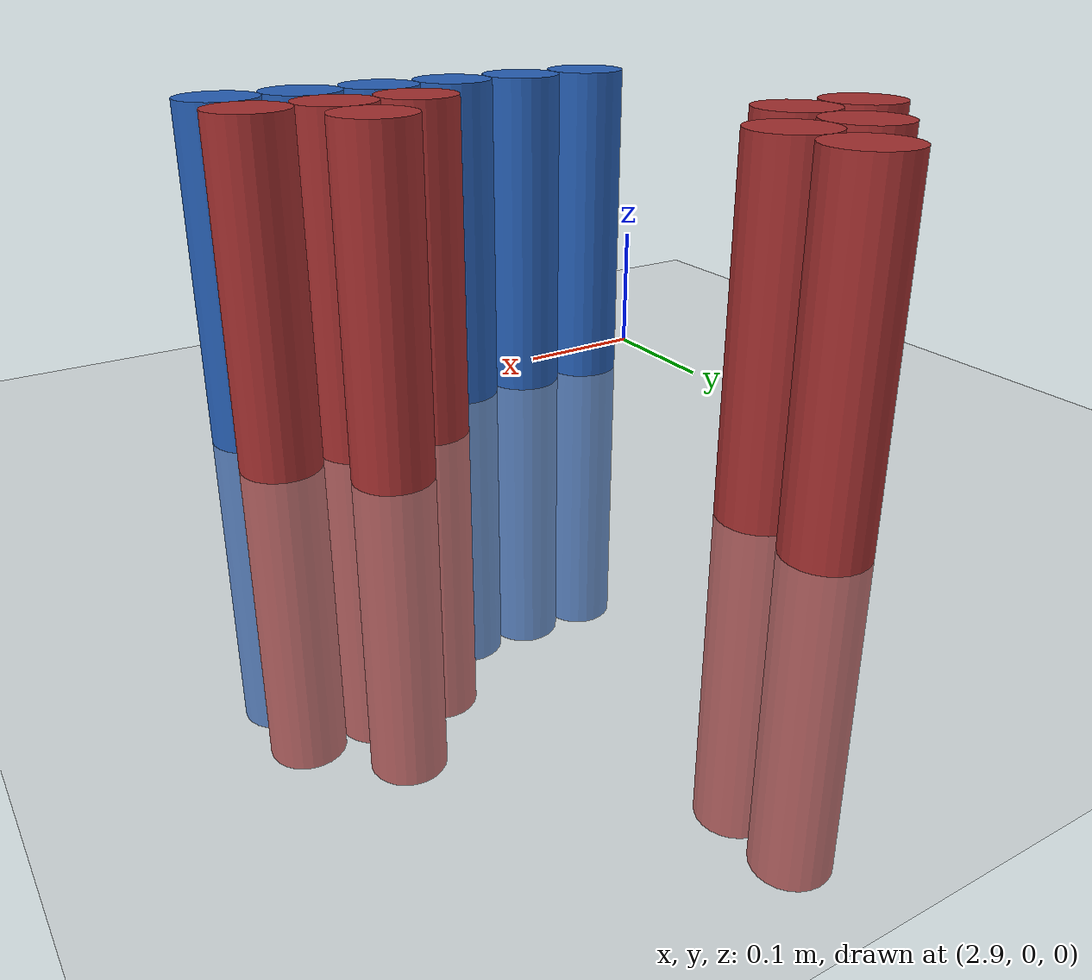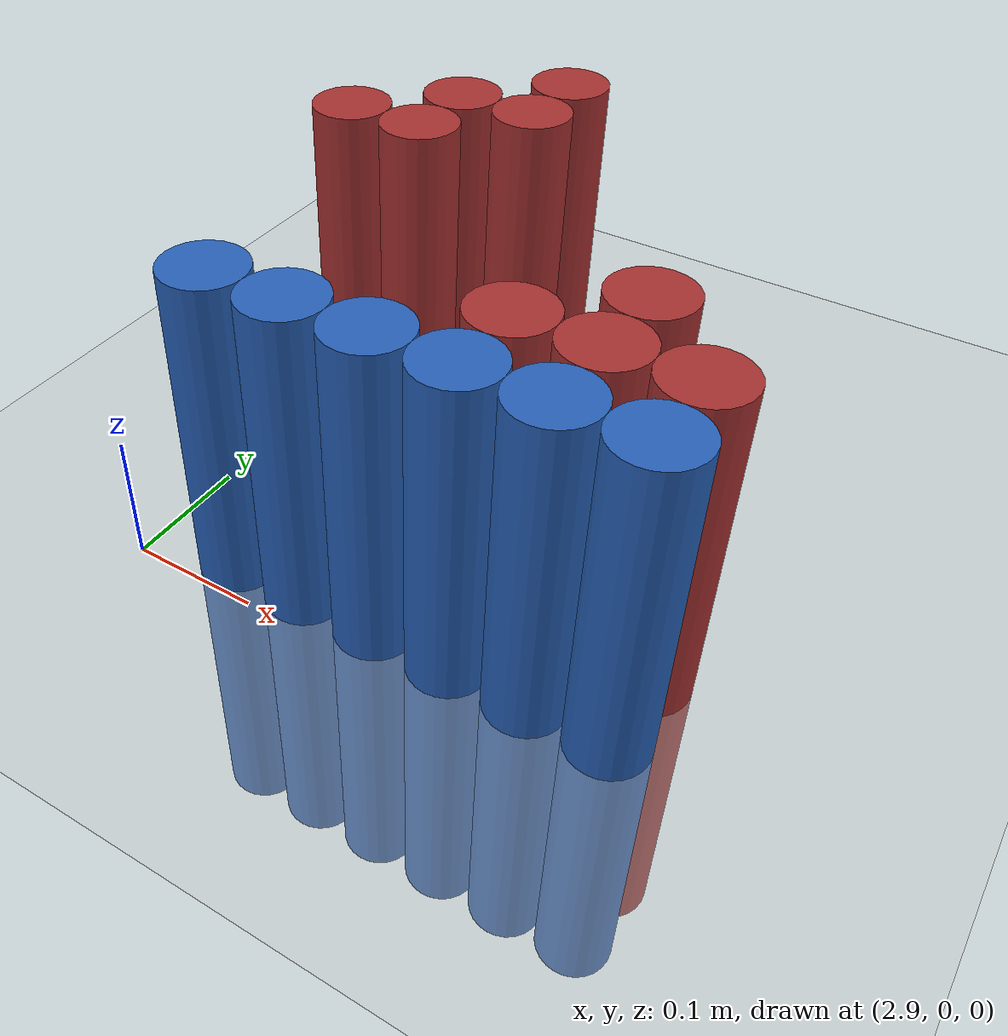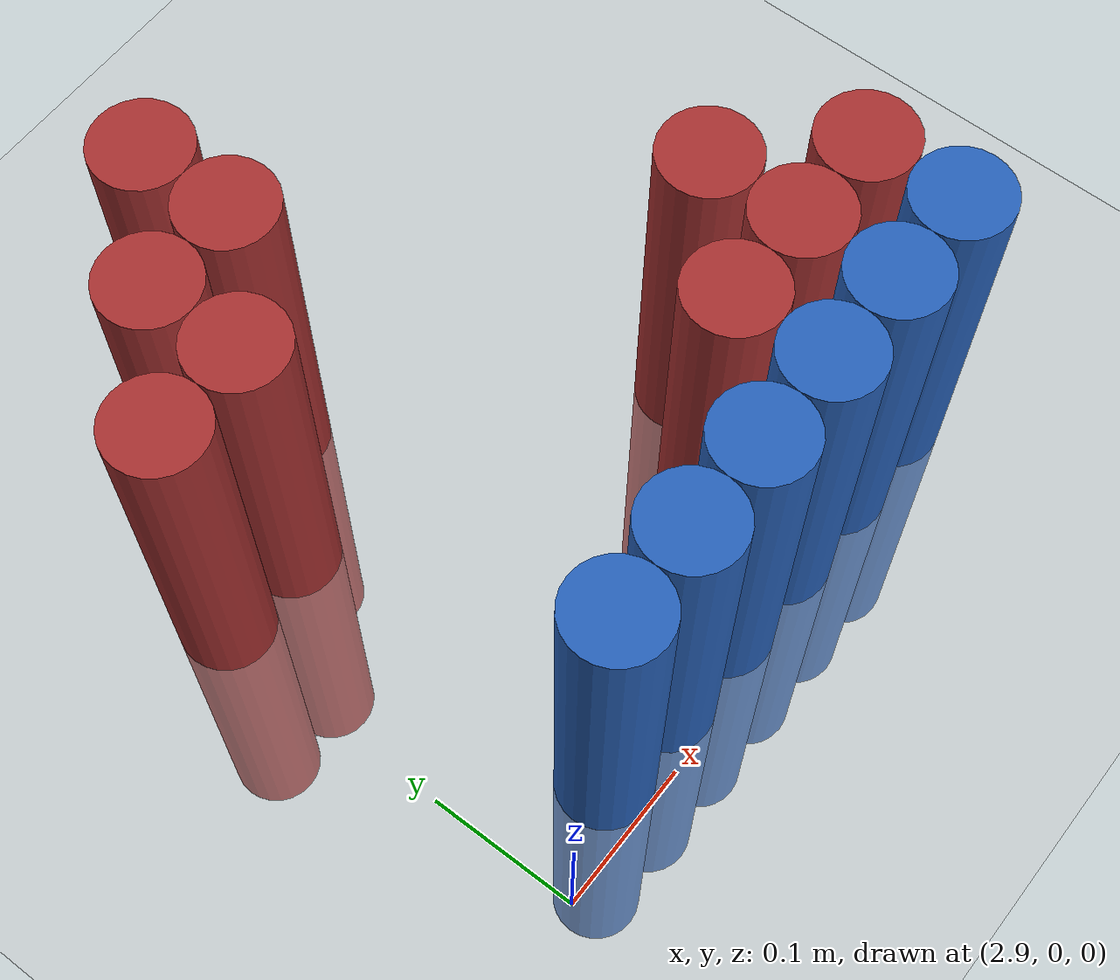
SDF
<sdf version="1.6">
 <world name="default">
  <model name="ground_plane">
   <static>1</static>
   <link name="link">
    <collision name="collision">
     <geometry><plane><normal>0 0 1</normal><size>100 100</size></plane></geometry>
     <surface><friction><ode><mu>100</mu><mu2>50</mu2></ode></friction></surface>
    </collision>
    <visual name="visual">
     <cast_shadows>0</cast_shadows>
     <geometry><plane><normal>0 0 1</normal><size>100 100</size></plane></geometry>
     <material>
      <script><uri>file://media/materials/scripts/gazebo.material</uri><name>Gazebo/Grey</name></script>
     </material>
    </visual>
   </link>
  </model>
  <model name="unit_cylinder_188">
   <static>1</static>
   <pose>3.030000 0.390000 0.000000 0.000000 0.000000 0.000000</pose>
   <link name="link">
    <inertial>
     <mass>1</mass>
     <inertia><ixx>0.145833</ixx><ixy>0</ixy><ixz>0</ixz><iyy>0.145833</iyy><iyz>0</iyz><izz>0.125</izz></inertia>
    </inertial>
    <collision name="collision">
     <geometry><cylinder><radius>0.030000</radius><length>0.5</length></cylinder></geometry>
    </collision>
    <visual name="visual">
     <geometry><cylinder><radius>0.030000</radius><length>0.5</length></cylinder></geometry>
     <material>
      <ambient>0.648000 0.192000 0.192000 1</ambient>
      <diffuse>0.648000 0.192000 0.192000 1</diffuse>
     </material>
     <material>
      <script><name>Gazebo/Grey</name><uri>file://media/materials/scripts/gazebo.material</uri></script>
     </material>
    </visual>
   </link>
  </model>
  <model name="unit_cylinder_189">
   <static>1</static>
   <pose>2.970000 0.330000 0.000000 0.000000 0.000000 0.000000</pose>
   <link name="link">
    <inertial>
     <mass>1</mass>
     <inertia><ixx>0.145833</ixx><ixy>0</ixy><ixz>0</ixz><iyy>0.145833</iyy><iyz>0</iyz><izz>0.125</izz></inertia>
    </inertial>
    <collision name="collision">
     <geometry><cylinder><radius>0.030000</radius><length>0.5</length></cylinder></geometry>
    </collision>
    <visual name="visual">
     <geometry><cylinder><radius>0.030000</radius><length>0.5</length></cylinder></geometry>
     <material>
      <ambient>0.648000 0.192000 0.192000 1</ambient>
      <diffuse>0.648000 0.192000 0.192000 1</diffuse>
     </material>
     <material>
      <script><name>Gazebo/Grey</name><uri>file://media/materials/scripts/gazebo.material</uri></script>
     </material>
    </visual>
   </link>
  </model>
  <model name="unit_cylinder_190">
   <static>1</static>
   <pose>3.030000 0.330000 0.000000 0.000000 0.000000 0.000000</pose>
   <link name="link">
    <inertial>
     <mass>1</mass>
     <inertia><ixx>0.145833</ixx><ixy>0</ixy><ixz>0</ixz><iyy>0.145833</iyy><iyz>0</iyz><izz>0.125</izz></inertia>
    </inertial>
    <collision name="collision">
     <geometry><cylinder><radius>0.030000</radius><length>0.5</length></cylinder></geometry>
    </collision>
    <visual name="visual">
     <geometry><cylinder><radius>0.030000</radius><length>0.5</length></cylinder></geometry>
     <material>
      <ambient>0.648000 0.192000 0.192000 1</ambient>
      <diffuse>0.648000 0.192000 0.192000 1</diffuse>
     </material>
     <material>
      <script><name>Gazebo/Grey</name><uri>file://media/materials/scripts/gazebo.material</uri></script>
     </material>
    </visual>
   </link>
  </model>
  <model name="unit_cylinder_194">
   <static>1</static>
   <pose>2.910000 0.270000 0.000000 0.000000 0.000000 0.000000</pose>
   <link name="link">
    <inertial>
     <mass>1</mass>
     <inertia><ixx>0.145833</ixx><ixy>0</ixy><ixz>0</ixz><iyy>0.145833</iyy><iyz>0</iyz><izz>0.125</izz></inertia>
    </inertial>
    <collision name="collision">
     <geometry><cylinder><radius>0.030000</radius><length>0.5</length></cylinder></geometry>
    </collision>
    <visual name="visual">
     <geometry><cylinder><radius>0.030000</radius><length>0.5</length></cylinder></geometry>
     <material>
      <ambient>0.648000 0.192000 0.192000 1</ambient>
      <diffuse>0.648000 0.192000 0.192000 1</diffuse>
     </material>
     <material>
      <script><name>Gazebo/Grey</name><uri>file://media/materials/scripts/gazebo.material</uri></script>
     </material>
    </visual>
   </link>
  </model>
  <model name="unit_cylinder_195">
   <static>1</static>
   <pose>2.970000 0.270000 0.000000 0.000000 0.000000 0.000000</pose>
   <link name="link">
    <inertial>
     <mass>1</mass>
     <inertia><ixx>0.145833</ixx><ixy>0</ixy><ixz>0</ixz><iyy>0.145833</iyy><iyz>0</iyz><izz>0.125</izz></inertia>
    </inertial>
    <collision name="collision">
     <geometry><cylinder><radius>0.030000</radius><length>0.5</length></cylinder></geometry>
    </collision>
    <visual name="visual">
     <geometry><cylinder><radius>0.030000</radius><length>0.5</length></cylinder></geometry>
     <material>
      <ambient>0.648000 0.192000 0.192000 1</ambient>
      <diffuse>0.648000 0.192000 0.192000 1</diffuse>
     </material>
     <material>
      <script><name>Gazebo/Grey</name><uri>file://media/materials/scripts/gazebo.material</uri></script>
     </material>
    </visual>
   </link>
  </model>
  <model name="unit_cylinder_204">
   <static>1</static>
   <pose>3.210000 0.150000 0.000000 0.000000 0.000000 0.000000</pose>
   <link name="link">
    <inertial>
     <mass>1</mass>
     <inertia><ixx>0.145833</ixx><ixy>0</ixy><ixz>0</ixz><iyy>0.145833</iyy><iyz>0</iyz><izz>0.125</izz></inertia>
    </inertial>
    <collision name="collision">
     <geometry><cylinder><radius>0.030000</radius><length>0.5</length></cylinder></geometry>
    </collision>
    <visual name="visual">
     <geometry><cylinder><radius>0.030000</radius><length>0.5</length></cylinder></geometry>
     <material>
      <ambient>0.648000 0.192000 0.192000 1</ambient>
      <diffuse>0.648000 0.192000 0.192000 1</diffuse>
     </material>
     <material>
      <script><name>Gazebo/Grey</name><uri>file://media/materials/scripts/gazebo.material</uri></script>
     </material>
    </visual>
   </link>
  </model>
  <model name="unit_cylinder_216">
   <static>1</static>
   <pose>3.150000 0.090000 0.000000 0.000000 0.000000 0.000000</pose>
   <link name="link">
    <inertial>
     <mass>1</mass>
     <inertia><ixx>0.145833</ixx><ixy>0</ixy><ixz>0</ixz><iyy>0.145833</iyy><iyz>0</iyz><izz>0.125</izz></inertia>
    </inertial>
    <collision name="collision">
     <geometry><cylinder><radius>0.030000</radius><length>0.5</length></cylinder></geometry>
    </collision>
    <visual name="visual">
     <geometry><cylinder><radius>0.030000</radius><length>0.5</length></cylinder></geometry>
     <material>
      <ambient>0.648000 0.192000 0.192000 1</ambient>
      <diffuse>0.648000 0.192000 0.192000 1</diffuse>
     </material>
     <material>
      <script><name>Gazebo/Grey</name><uri>file://media/materials/scripts/gazebo.material</uri></script>
     </material>
    </visual>
   </link>
  </model>
  <model name="unit_cylinder_217">
   <static>1</static>
   <pose>3.210000 0.090000 0.000000 0.000000 0.000000 0.000000</pose>
   <link name="link">
    <inertial>
     <mass>1</mass>
     <inertia><ixx>0.145833</ixx><ixy>0</ixy><ixz>0</ixz><iyy>0.145833</iyy><iyz>0</iyz><izz>0.125</izz></inertia>
    </inertial>
    <collision name="collision">
     <geometry><cylinder><radius>0.030000</radius><length>0.5</length></cylinder></geometry>
    </collision>
    <visual name="visual">
     <geometry><cylinder><radius>0.030000</radius><length>0.5</length></cylinder></geometry>
     <material>
      <ambient>0.648000 0.192000 0.192000 1</ambient>
      <diffuse>0.648000 0.192000 0.192000 1</diffuse>
     </material>
     <material>
      <script><name>Gazebo/Grey</name><uri>file://media/materials/scripts/gazebo.material</uri></script>
     </material>
    </visual>
   </link>
  </model>
  <model name="unit_cylinder_218">
   <static>1</static>
   <pose>3.270000 0.090000 0.000000 0.000000 0.000000 0.000000</pose>
   <link name="link">
    <inertial>
     <mass>1</mass>
     <inertia><ixx>0.145833</ixx><ixy>0</ixy><ixz>0</ixz><iyy>0.145833</iyy><iyz>0</iyz><izz>0.125</izz></inertia>
    </inertial>
    <collision name="collision">
     <geometry><cylinder><radius>0.030000</radius><length>0.5</length></cylinder></geometry>
    </collision>
    <visual name="visual">
     <geometry><cylinder><radius>0.030000</radius><length>0.5</length></cylinder></geometry>
     <material>
      <ambient>0.648000 0.192000 0.192000 1</ambient>
      <diffuse>0.648000 0.192000 0.192000 1</diffuse>
     </material>
     <material>
      <script><name>Gazebo/Grey</name><uri>file://media/materials/scripts/gazebo.material</uri></script>
     </material>
    </visual>
   </link>
  </model>
  <model name="unit_cylinder_235">
   <static>1</static>
   <pose>2.970000 0.030000 0.000000 0.000000 0.000000 0.000000</pose>
   <link name="link">
    <inertial>
     <mass>1</mass>
     <inertia><ixx>0.145833</ixx><ixy>0</ixy><ixz>0</ixz><iyy>0.145833</iyy><iyz>0</iyz><izz>0.125</izz></inertia>
    </inertial>
    <collision name="collision">
     <geometry><cylinder><radius>0.030000</radius><length>0.5</length></cylinder></geometry>
    </collision>
    <visual name="visual">
     <geometry><cylinder><radius>0.030000</radius><length>0.5</length></cylinder></geometry>
     <material>
      <ambient>0.152000 0.379000 0.720000 1</ambient>
      <diffuse>0.152000 0.379000 0.720000 1</diffuse>
     </material>
     <material>
      <script><name>Gazebo/Grey</name><uri>file://media/materials/scripts/gazebo.material</uri></script>
     </material>
    </visual>
   </link>
  </model>
  <model name="unit_cylinder_236">
   <static>1</static>
   <pose>3.030000 0.030000 0.000000 0.000000 0.000000 0.000000</pose>
   <link name="link">
    <inertial>
     <mass>1</mass>
     <inertia><ixx>0.145833</ixx><ixy>0</ixy><ixz>0</ixz><iyy>0.145833</iyy><iyz>0</iyz><izz>0.125</izz></inertia>
    </inertial>
    <collision name="collision">
     <geometry><cylinder><radius>0.030000</radius><length>0.5</length></cylinder></geometry>
    </collision>
    <visual name="visual">
     <geometry><cylinder><radius>0.030000</radius><length>0.5</length></cylinder></geometry>
     <material>
      <ambient>0.152000 0.379000 0.720000 1</ambient>
      <diffuse>0.152000 0.379000 0.720000 1</diffuse>
     </material>
     <material>
      <script><name>Gazebo/Grey</name><uri>file://media/materials/scripts/gazebo.material</uri></script>
     </material>
    </visual>
   </link>
  </model>
  <model name="unit_cylinder_237">
   <static>1</static>
   <pose>3.090000 0.030000 0.000000 0.000000 0.000000 0.000000</pose>
   <link name="link">
    <inertial>
     <mass>1</mass>
     <inertia><ixx>0.145833</ixx><ixy>0</ixy><ixz>0</ixz><iyy>0.145833</iyy><iyz>0</iyz><izz>0.125</izz></inertia>
    </inertial>
    <collision name="collision">
     <geometry><cylinder><radius>0.030000</radius><length>0.5</length></cylinder></geometry>
    </collision>
    <visual name="visual">
     <geometry><cylinder><radius>0.030000</radius><length>0.5</length></cylinder></geometry>
     <material>
      <ambient>0.152000 0.379000 0.720000 1</ambient>
      <diffuse>0.152000 0.379000 0.720000 1</diffuse>
     </material>
     <material>
      <script><name>Gazebo/Grey</name><uri>file://media/materials/scripts/gazebo.material</uri></script>
     </material>
    </visual>
   </link>
  </model>
  <model name="unit_cylinder_238">
   <static>1</static>
   <pose>3.150000 0.030000 0.000000 0.000000 0.000000 0.000000</pose>
   <link name="link">
    <inertial>
     <mass>1</mass>
     <inertia><ixx>0.145833</ixx><ixy>0</ixy><ixz>0</ixz><iyy>0.145833</iyy><iyz>0</iyz><izz>0.125</izz></inertia>
    </inertial>
    <collision name="collision">
     <geometry><cylinder><radius>0.030000</radius><length>0.5</length></cylinder></geometry>
    </collision>
    <visual name="visual">
     <geometry><cylinder><radius>0.030000</radius><length>0.5</length></cylinder></geometry>
     <material>
      <ambient>0.152000 0.379000 0.720000 1</ambient>
      <diffuse>0.152000 0.379000 0.720000 1</diffuse>
     </material>
     <material>
      <script><name>Gazebo/Grey</name><uri>file://media/materials/scripts/gazebo.material</uri></script>
     </material>
    </visual>
   </link>
  </model>
  <model name="unit_cylinder_239">
   <static>1</static>
   <pose>3.210000 0.030000 0.000000 0.000000 0.000000 0.000000</pose>
   <link name="link">
    <inertial>
     <mass>1</mass>
     <inertia><ixx>0.145833</ixx><ixy>0</ixy><ixz>0</ixz><iyy>0.145833</iyy><iyz>0</iyz><izz>0.125</izz></inertia>
    </inertial>
    <collision name="collision">
     <geometry><cylinder><radius>0.030000</radius><length>0.5</length></cylinder></geometry>
    </collision>
    <visual name="visual">
     <geometry><cylinder><radius>0.030000</radius><length>0.5</length></cylinder></geometry>
     <material>
      <ambient>0.152000 0.379000 0.720000 1</ambient>
      <diffuse>0.152000 0.379000 0.720000 1</diffuse>
     </material>
     <material>
      <script><name>Gazebo/Grey</name><uri>file://media/materials/scripts/gazebo.material</uri></script>
     </material>
    </visual>
   </link>
  </model>
  <model name="unit_cylinder_240">
   <static>1</static>
   <pose>3.270000 0.030000 0.000000 0.000000 0.000000 0.000000</pose>
   <link name="link">
    <inertial>
     <mass>1</mass>
     <inertia><ixx>0.145833</ixx><ixy>0</ixy><ixz>0</ixz><iyy>0.145833</iyy><iyz>0</iyz><izz>0.125</izz></inertia>
    </inertial>
    <collision name="collision">
     <geometry><cylinder><radius>0.030000</radius><length>0.5</length></cylinder></geometry>
    </collision>
    <visual name="visual">
     <geometry><cylinder><radius>0.030000</radius><length>0.5</length></cylinder></geometry>
     <material>
      <ambient>0.152000 0.379000 0.720000 1</ambient>
      <diffuse>0.152000 0.379000 0.720000 1</diffuse>
     </material>
     <material>
      <script><name>Gazebo/Grey</name><uri>file://media/materials/scripts/gazebo.material</uri></script>
     </material>
    </visual>
   </link>
  </model>
 </world>
</sdf>
